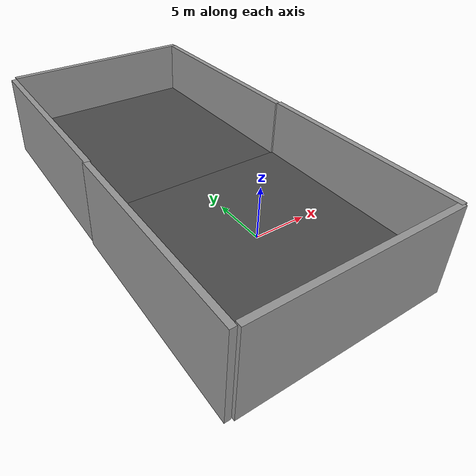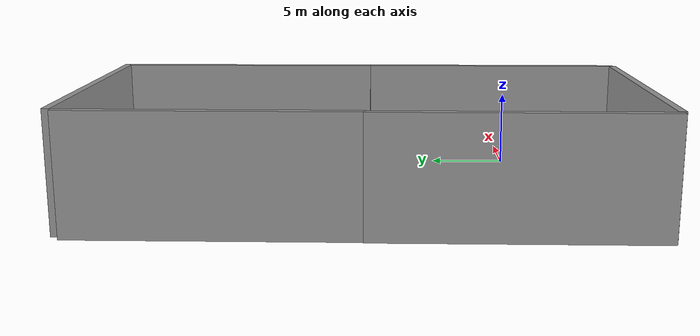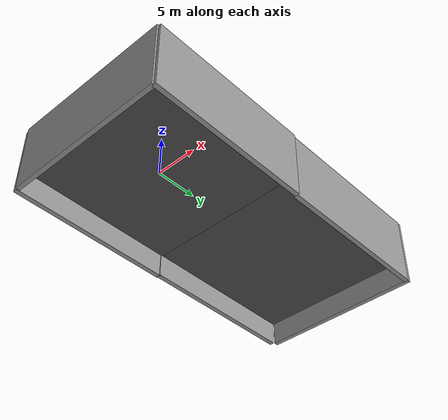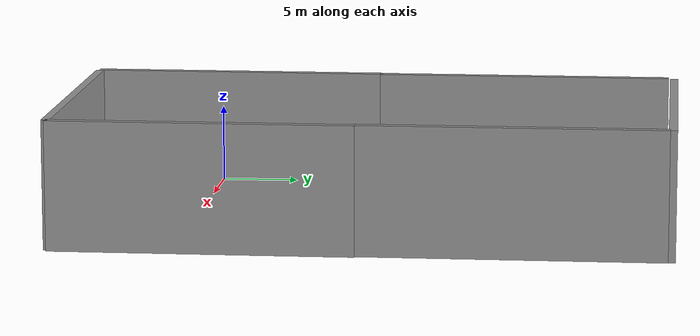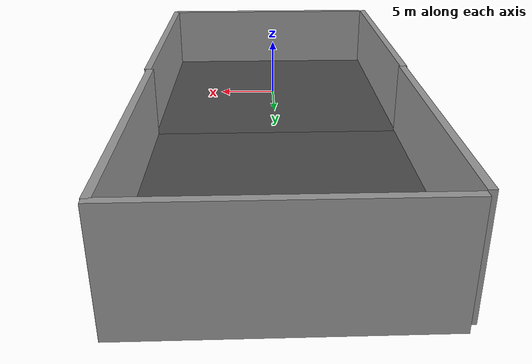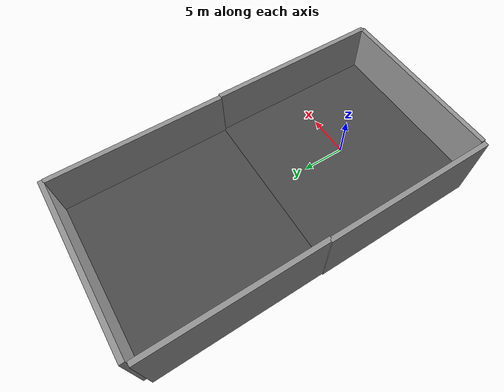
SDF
<?xml version='1.0'?>
<sdf version='1.6'>
  <model name='square_empty'>
    <model name='asphalt_plane'>
      <static>1</static>
      <link name='link'>
        <collision name='collision'>
          <geometry>
            <box>
              <size>20 20 0.1</size>
            </box>
          </geometry>
        </collision>
        <visual name='visual'>
          <cast_shadows>0</cast_shadows>
          <geometry>
            <box>
              <size>20 20 0.1</size>
            </box>
          </geometry>
          <material>
            <script>
              <uri>model://asphalt_plane/materials/scripts</uri>
              <uri>model://asphalt_plane/materials/textures</uri>
              <name>vrc/asphalt</name>
            </script>
          </material>
        </visual>
      </link>
      <pose frame=''>4e-06 -1.1e-05 0 0 -0 0</pose>
    </model>
    <model name='asphalt_plane_0'>
      <static>1</static>
      <link name='link'>
        <collision name='collision'>
          <geometry>
            <box>
              <size>20 20 0.1</size>
            </box>
          </geometry>
        </collision>
        <visual name='visual'>
          <cast_shadows>0</cast_shadows>
          <geometry>
            <box>
              <size>20 20 0.1</size>
            </box>
          </geometry>
          <material>
            <script>
              <uri>model://asphalt_plane/materials/scripts</uri>
              <uri>model://asphalt_plane/materials/textures</uri>
              <name>vrc/asphalt</name>
            </script>
          </material>
        </visual>
      </link>
      <pose frame=''>4e-06 20 0 0 -0 0</pose>
    </model>
    <model name='grey_wall_mw'>
      <link name='link'>
        <pose frame=''>-8.81665 -2.69351 1.4 0 -0 0</pose>
        <inertial>
          <inertia>
            <ixx>nan</ixx>
            <ixy>0</ixy>
            <ixz>0</ixz>
            <iyy>nan</iyy>
            <iyz>0</iyz>
            <izz>nan</izz>
          </inertia>
          <mass>0</mass>
          <pose frame=''>0 0 0 0 -0 0</pose>
        </inertial>
        <self_collide>0</self_collide>
        <kinematic>0</kinematic>
        <visual name='visual'>
          <cast_shadows>0</cast_shadows>
          <geometry>
            <box>
              <size>20.2056 0.556506 8.63552</size>
            </box>
          </geometry>
          <material>
            <script>
              <uri>model://grey_wall/materials/scripts</uri>
              <uri>model://grey_wall/materials/textures</uri>
              <name>vrc/grey_wall</name>
            </script>
            <ambient>1 1 1 1</ambient>
            <diffuse>1 1 1 1</diffuse>
            <specular>0 0 0 1</specular>
            <emissive>0 0 0 1</emissive>
          </material>
          <pose frame=''>0 0 0 0 -0 0</pose>
          <transparency>0</transparency>
        </visual>
        <collision name='collision'>
          <laser_retro>0</laser_retro>
          <max_contacts>10</max_contacts>
          <pose frame=''>0 0 0 0 -0 0</pose>
          <geometry>
            <box>
              <size>20.2056 0.556506 8.63552</size>
            </box>
          </geometry>
          <surface>
            <friction>
              <ode>
                <mu>1</mu>
                <mu2>1</mu2>
                <fdir1>0 0 0</fdir1>
                <slip1>0</slip1>
                <slip2>0</slip2>
              </ode>
              <torsional>
                <coefficient>1</coefficient>
                <patch_radius>0</patch_radius>
                <surface_radius>0</surface_radius>
                <use_patch_radius>1</use_patch_radius>
                <ode>
                  <slip>0</slip>
                </ode>
              </torsional>
            </friction>
            <bounce>
              <restitution_coefficient>0</restitution_coefficient>
              <threshold>1e+06</threshold>
            </bounce>
            <contact>
              <collide_without_contact>0</collide_without_contact>
              <collide_without_contact_bitmask>1</collide_without_contact_bitmask>
              <collide_bitmask>1</collide_bitmask>
              <ode>
                <soft_cfm>0</soft_cfm>
                <soft_erp>0.2</soft_erp>
                <kp>1e+13</kp>
                <kd>1</kd>
                <max_vel>0.01</max_vel>
                <min_depth>0</min_depth>
              </ode>
              <bullet>
                <split_impulse>1</split_impulse>
                <split_impulse_penetration_threshold>-0.01</split_impulse_penetration_threshold>
                <soft_cfm>0</soft_cfm>
                <soft_erp>0.2</soft_erp>
                <kp>1e+13</kp>
                <kd>1</kd>
              </bullet>
            </contact>
          </surface>
        </collision>
      </link>
      <static>1</static>
      <allow_auto_disable>1</allow_auto_disable>
      <pose frame=''>9 33 0 0 -0 0</pose>
    </model>
    <model name='grey_wall_mw_clone'>
      <link name='link'>
        <pose frame=''>-8.81665 -2.69351 1.4 0 -0 0</pose>
        <inertial>
          <inertia>
            <ixx>nan</ixx>
            <ixy>0</ixy>
            <ixz>0</ixz>
            <iyy>nan</iyy>
            <iyz>0</iyz>
            <izz>nan</izz>
          </inertia>
          <mass>0</mass>
          <pose frame=''>0 0 0 0 -0 0</pose>
        </inertial>
        <self_collide>0</self_collide>
        <kinematic>0</kinematic>
        <visual name='visual'>
          <cast_shadows>0</cast_shadows>
          <geometry>
            <box>
              <size>20.2056 0.556506 8.63552</size>
            </box>
          </geometry>
          <material>
            <script>
              <uri>model://grey_wall/materials/scripts</uri>
              <uri>model://grey_wall/materials/textures</uri>
              <name>vrc/grey_wall</name>
            </script>
            <ambient>1 1 1 1</ambient>
            <diffuse>1 1 1 1</diffuse>
            <specular>0 0 0 1</specular>
            <emissive>0 0 0 1</emissive>
          </material>
          <pose frame=''>0 0 0 0 -0 0</pose>
          <transparency>0</transparency>
        </visual>
        <collision name='collision'>
          <laser_retro>0</laser_retro>
          <max_contacts>10</max_contacts>
          <pose frame=''>0 0 0 0 -0 0</pose>
          <geometry>
            <box>
              <size>20.2056 0.556506 8.63552</size>
            </box>
          </geometry>
          <surface>
            <friction>
              <ode>
                <mu>1</mu>
                <mu2>1</mu2>
                <fdir1>0 0 0</fdir1>
                <slip1>0</slip1>
                <slip2>0</slip2>
              </ode>
              <torsional>
                <coefficient>1</coefficient>
                <patch_radius>0</patch_radius>
                <surface_radius>0</surface_radius>
                <use_patch_radius>1</use_patch_radius>
                <ode>
                  <slip>0</slip>
                </ode>
              </torsional>
            </friction>
            <bounce>
              <restitution_coefficient>0</restitution_coefficient>
              <threshold>1e+06</threshold>
            </bounce>
            <contact>
              <collide_without_contact>0</collide_without_contact>
              <collide_without_contact_bitmask>1</collide_without_contact_bitmask>
              <collide_bitmask>1</collide_bitmask>
              <ode>
                <soft_cfm>0</soft_cfm>
                <soft_erp>0.2</soft_erp>
                <kp>1e+13</kp>
                <kd>1</kd>
                <max_vel>0.01</max_vel>
                <min_depth>0</min_depth>
              </ode>
              <bullet>
                <split_impulse>1</split_impulse>
                <split_impulse_penetration_threshold>-0.01</split_impulse_penetration_threshold>
                <soft_cfm>0</soft_cfm>
                <soft_erp>0.2</soft_erp>
                <kp>1e+13</kp>
                <kd>1</kd>
              </bullet>
            </contact>
          </surface>
        </collision>
      </link>
      <static>1</static>
      <allow_auto_disable>1</allow_auto_disable>
      <pose frame=''>9 -7.53084 0 0 -0 0</pose>
    </model>
    <model name='grey_wall_mw_clone_0'>
      <link name='link'>
        <pose frame=''>-8.81665 -2.69351 1.4 0 -0 0</pose>
        <inertial>
          <inertia>
            <ixx>nan</ixx>
            <ixy>0</ixy>
            <ixz>0</ixz>
            <iyy>nan</iyy>
            <iyz>0</iyz>
            <izz>nan</izz>
          </inertia>
          <mass>0</mass>
          <pose frame=''>0 0 0 0 -0 0</pose>
        </inertial>
        <self_collide>0</self_collide>
        <kinematic>0</kinematic>
        <visual name='visual'>
          <cast_shadows>0</cast_shadows>
          <geometry>
            <box>
              <size>20.2056 0.556506 8.63552</size>
            </box>
          </geometry>
          <material>
            <script>
              <uri>model://grey_wall/materials/scripts</uri>
              <uri>model://grey_wall/materials/textures</uri>
              <name>vrc/grey_wall</name>
            </script>
            <ambient>1 1 1 1</ambient>
            <diffuse>1 1 1 1</diffuse>
            <specular>0 0 0 1</specular>
            <emissive>0 0 0 1</emissive>
          </material>
          <pose frame=''>0 0 0 0 -0 0</pose>
          <transparency>0</transparency>
        </visual>
        <collision name='collision'>
          <laser_retro>0</laser_retro>
          <max_contacts>10</max_contacts>
          <pose frame=''>0 0 0 0 -0 0</pose>
          <geometry>
            <box>
              <size>20.2056 0.556506 8.63552</size>
            </box>
          </geometry>
          <surface>
            <friction>
              <ode>
                <mu>1</mu>
                <mu2>1</mu2>
                <fdir1>0 0 0</fdir1>
                <slip1>0</slip1>
                <slip2>0</slip2>
              </ode>
              <torsional>
                <coefficient>1</coefficient>
                <patch_radius>0</patch_radius>
                <surface_radius>0</surface_radius>
                <use_patch_radius>1</use_patch_radius>
                <ode>
                  <slip>0</slip>
                </ode>
              </torsional>
            </friction>
            <bounce>
              <restitution_coefficient>0</restitution_coefficient>
              <threshold>1e+06</threshold>
            </bounce>
            <contact>
              <collide_without_contact>0</collide_without_contact>
              <collide_without_contact_bitmask>1</collide_without_contact_bitmask>
              <collide_bitmask>1</collide_bitmask>
              <ode>
                <soft_cfm>0</soft_cfm>
                <soft_erp>0.2</soft_erp>
                <kp>1e+13</kp>
                <kd>1</kd>
                <max_vel>0.01</max_vel>
                <min_depth>0</min_depth>
              </ode>
              <bullet>
                <split_impulse>1</split_impulse>
                <split_impulse_penetration_threshold>-0.01</split_impulse_penetration_threshold>
                <soft_cfm>0</soft_cfm>
                <soft_erp>0.2</soft_erp>
                <kp>1e+13</kp>
                <kd>1</kd>
              </bullet>
            </contact>
          </surface>
        </collision>
      </link>
      <static>1</static>
      <allow_auto_disable>1</allow_auto_disable>
      <pose frame=''>12.7893 11.2013 0 0 0 -1.56937</pose>
    </model>
    <model name='grey_wall_mw_clone_0_clone'>
      <link name='link'>
        <pose frame=''>-8.81665 -2.69351 1.4 0 -0 0</pose>
        <inertial>
          <inertia>
            <ixx>nan</ixx>
            <ixy>0</ixy>
            <ixz>0</ixz>
            <iyy>nan</iyy>
            <iyz>0</iyz>
            <izz>nan</izz>
          </inertia>
          <mass>0</mass>
          <pose frame=''>0 0 0 0 -0 0</pose>
        </inertial>
        <self_collide>0</self_collide>
        <kinematic>0</kinematic>
        <visual name='visual'>
          <cast_shadows>0</cast_shadows>
          <geometry>
            <box>
              <size>20.2056 0.556506 8.63552</size>
            </box>
          </geometry>
          <material>
            <script>
              <uri>model://grey_wall/materials/scripts</uri>
              <uri>model://grey_wall/materials/textures</uri>
              <name>vrc/grey_wall</name>
            </script>
            <ambient>1 1 1 1</ambient>
            <diffuse>1 1 1 1</diffuse>
            <specular>0 0 0 1</specular>
            <emissive>0 0 0 1</emissive>
          </material>
          <pose frame=''>0 0 0 0 -0 0</pose>
          <transparency>0</transparency>
        </visual>
        <collision name='collision'>
          <laser_retro>0</laser_retro>
          <max_contacts>10</max_contacts>
          <pose frame=''>0 0 0 0 -0 0</pose>
          <geometry>
            <box>
              <size>20.2056 0.556506 8.63552</size>
            </box>
          </geometry>
          <surface>
            <friction>
              <ode>
                <mu>1</mu>
                <mu2>1</mu2>
                <fdir1>0 0 0</fdir1>
                <slip1>0</slip1>
                <slip2>0</slip2>
              </ode>
              <torsional>
                <coefficient>1</coefficient>
                <patch_radius>0</patch_radius>
                <surface_radius>0</surface_radius>
                <use_patch_radius>1</use_patch_radius>
                <ode>
                  <slip>0</slip>
                </ode>
              </torsional>
            </friction>
            <bounce>
              <restitution_coefficient>0</restitution_coefficient>
              <threshold>1e+06</threshold>
            </bounce>
            <contact>
              <collide_without_contact>0</collide_without_contact>
              <collide_without_contact_bitmask>1</collide_without_contact_bitmask>
              <collide_bitmask>1</collide_bitmask>
              <ode>
                <soft_cfm>0</soft_cfm>
                <soft_erp>0.2</soft_erp>
                <kp>1e+13</kp>
                <kd>1</kd>
                <max_vel>0.01</max_vel>
                <min_depth>0</min_depth>
              </ode>
              <bullet>
                <split_impulse>1</split_impulse>
                <split_impulse_penetration_threshold>-0.01</split_impulse_penetration_threshold>
                <soft_cfm>0</soft_cfm>
                <soft_erp>0.2</soft_erp>
                <kp>1e+13</kp>
                <kd>1</kd>
              </bullet>
            </contact>
          </surface>
        </collision>
      </link>
      <static>1</static>
      <allow_auto_disable>1</allow_auto_disable>
      <pose frame=''>-7.52526 11 0 0 0 -1.56937</pose>
    </model>
    <model name='grey_wall_mw_clone_0_clone_0'>
      <link name='link'>
        <pose frame=''>-8.81665 -2.69351 1.4 0 -0 0</pose>
        <inertial>
          <inertia>
            <ixx>nan</ixx>
            <ixy>0</ixy>
            <ixz>0</ixz>
            <iyy>nan</iyy>
            <iyz>0</iyz>
            <izz>nan</izz>
          </inertia>
          <mass>0</mass>
          <pose frame=''>0 0 0 0 -0 0</pose>
        </inertial>
        <self_collide>0</self_collide>
        <kinematic>0</kinematic>
        <visual name='visual'>
          <cast_shadows>0</cast_shadows>
          <geometry>
            <box>
              <size>20.2056 0.556506 8.63552</size>
            </box>
          </geometry>
          <material>
            <script>
              <uri>model://grey_wall/materials/scripts</uri>
              <uri>model://grey_wall/materials/textures</uri>
              <name>vrc/grey_wall</name>
            </script>
            <ambient>1 1 1 1</ambient>
            <diffuse>1 1 1 1</diffuse>
            <specular>0 0 0 1</specular>
            <emissive>0 0 0 1</emissive>
          </material>
          <pose frame=''>0 0 0 0 -0 0</pose>
          <transparency>0</transparency>
        </visual>
        <collision name='collision'>
          <laser_retro>0</laser_retro>
          <max_contacts>10</max_contacts>
          <pose frame=''>0 0 0 0 -0 0</pose>
          <geometry>
            <box>
              <size>20.2056 0.556506 8.63552</size>
            </box>
          </geometry>
          <surface>
            <friction>
              <ode>
                <mu>1</mu>
                <mu2>1</mu2>
                <fdir1>0 0 0</fdir1>
                <slip1>0</slip1>
                <slip2>0</slip2>
              </ode>
              <torsional>
                <coefficient>1</coefficient>
                <patch_radius>0</patch_radius>
                <surface_radius>0</surface_radius>
                <use_patch_radius>1</use_patch_radius>
                <ode>
                  <slip>0</slip>
                </ode>
              </torsional>
            </friction>
            <bounce>
              <restitution_coefficient>0</restitution_coefficient>
              <threshold>1e+06</threshold>
            </bounce>
            <contact>
              <collide_without_contact>0</collide_without_contact>
              <collide_without_contact_bitmask>1</collide_without_contact_bitmask>
              <collide_bitmask>1</collide_bitmask>
              <ode>
                <soft_cfm>0</soft_cfm>
                <soft_erp>0.2</soft_erp>
                <kp>1e+13</kp>
                <kd>1</kd>
                <max_vel>0.01</max_vel>
                <min_depth>0</min_depth>
              </ode>
              <bullet>
                <split_impulse>1</split_impulse>
                <split_impulse_penetration_threshold>-0.01</split_impulse_penetration_threshold>
                <soft_cfm>0</soft_cfm>
                <soft_erp>0.2</soft_erp>
                <kp>1e+13</kp>
                <kd>1</kd>
              </bullet>
            </contact>
          </surface>
        </collision>
      </link>
      <static>1</static>
      <allow_auto_disable>1</allow_auto_disable>
      <pose frame=''>-7.59528 -9.00001 0 0 0 -1.56937</pose>
    </model>
    <model name='grey_wall_mw_clone_0_clone_1'>
      <link name='link'>
        <pose frame=''>-8.81665 -2.69351 1.4 0 -0 0</pose>
        <inertial>
          <inertia>
            <ixx>nan</ixx>
            <ixy>0</ixy>
            <ixz>0</ixz>
            <iyy>nan</iyy>
            <iyz>0</iyz>
            <izz>nan</izz>
          </inertia>
          <mass>0</mass>
          <pose frame=''>0 0 0 0 -0 0</pose>
        </inertial>
        <self_collide>0</self_collide>
        <kinematic>0</kinematic>
        <visual name='visual'>
          <cast_shadows>0</cast_shadows>
          <geometry>
            <box>
              <size>20.2056 0.556506 8.63552</size>
            </box>
          </geometry>
          <material>
            <script>
              <uri>model://grey_wall/materials/scripts</uri>
              <uri>model://grey_wall/materials/textures</uri>
              <name>vrc/grey_wall</name>
            </script>
            <ambient>1 1 1 1</ambient>
            <diffuse>1 1 1 1</diffuse>
            <specular>0 0 0 1</specular>
            <emissive>0 0 0 1</emissive>
          </material>
          <pose frame=''>0 0 0 0 -0 0</pose>
          <transparency>0</transparency>
        </visual>
        <collision name='collision'>
          <laser_retro>0</laser_retro>
          <max_contacts>10</max_contacts>
          <pose frame=''>0 0 0 0 -0 0</pose>
          <geometry>
            <box>
              <size>20.2056 0.556506 8.63552</size>
            </box>
          </geometry>
          <surface>
            <friction>
              <ode>
                <mu>1</mu>
                <mu2>1</mu2>
                <fdir1>0 0 0</fdir1>
                <slip1>0</slip1>
                <slip2>0</slip2>
              </ode>
              <torsional>
                <coefficient>1</coefficient>
                <patch_radius>0</patch_radius>
                <surface_radius>0</surface_radius>
                <use_patch_radius>1</use_patch_radius>
                <ode>
                  <slip>0</slip>
                </ode>
              </torsional>
            </friction>
            <bounce>
              <restitution_coefficient>0</restitution_coefficient>
              <threshold>1e+06</threshold>
            </bounce>
            <contact>
              <collide_without_contact>0</collide_without_contact>
              <collide_without_contact_bitmask>1</collide_without_contact_bitmask>
              <collide_bitmask>1</collide_bitmask>
              <ode>
                <soft_cfm>0</soft_cfm>
                <soft_erp>0.2</soft_erp>
                <kp>1e+13</kp>
                <kd>1</kd>
                <max_vel>0.01</max_vel>
                <min_depth>0</min_depth>
              </ode>
              <bullet>
                <split_impulse>1</split_impulse>
                <split_impulse_penetration_threshold>-0.01</split_impulse_penetration_threshold>
                <soft_cfm>0</soft_cfm>
                <soft_erp>0.2</soft_erp>
                <kp>1e+13</kp>
                <kd>1</kd>
              </bullet>
            </contact>
          </surface>
        </collision>
      </link>
      <static>1</static>
      <allow_auto_disable>1</allow_auto_disable>
      <pose frame=''>13 -9.00001 0 0 0 -1.56937</pose>
    </model>
    <static>0</static>
    <allow_auto_disable>1</allow_auto_disable>
  </model>
</sdf>
